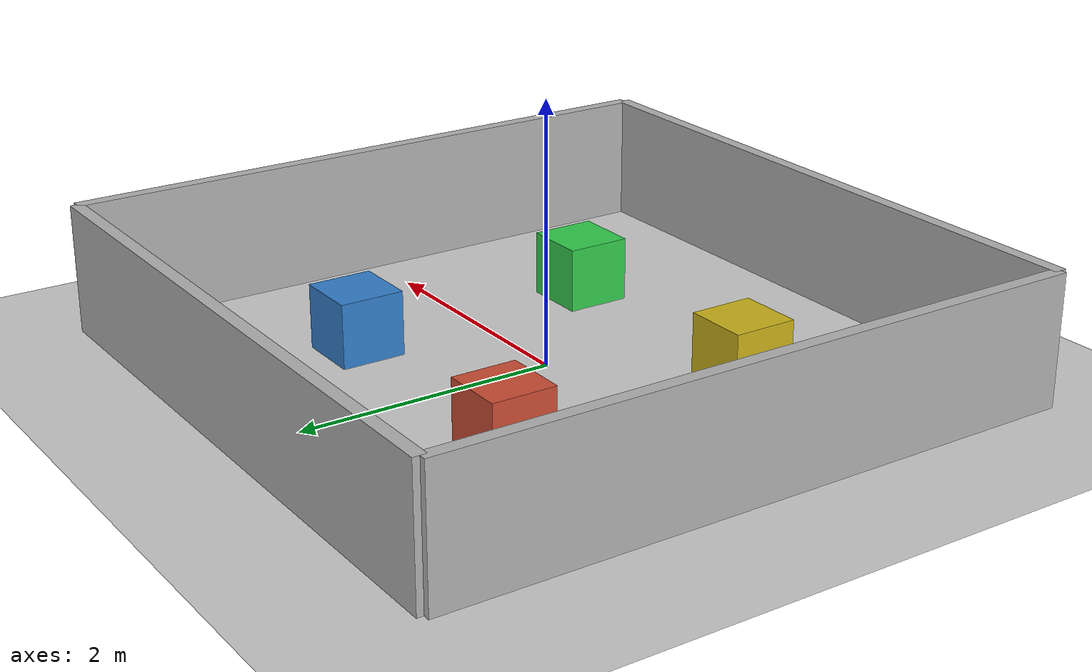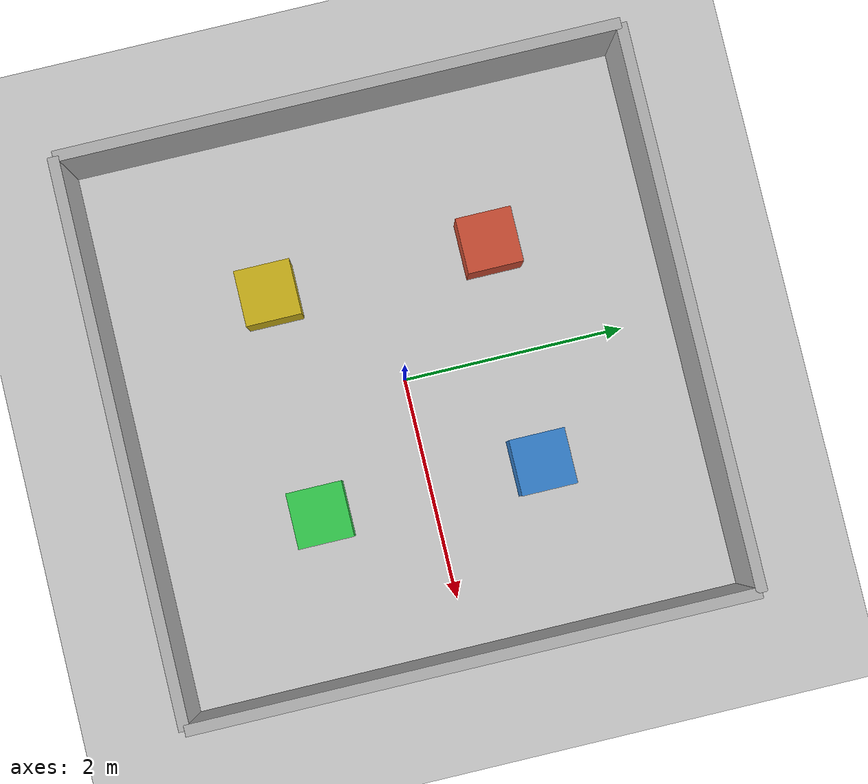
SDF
<?xml version="1.0" ?>
<sdf version="1.6">
  <world name="prueba_mundo">

    <!-- Luz ambiental -->
    <light name="sun" type="directional">
      <cast_shadows>true</cast_shadows>
      <pose>0 0 10 0 0 0</pose>
      <diffuse>0.8 0.8 0.8 1</diffuse>
      <specular>0.2 0.2 0.2 1</specular>
      <direction>-0.5 0.1 -0.9</direction>
    </light>

    <!-- Suelo -->
    <model name="ground_plane">
      <static>true</static>
      <link name="link">
        <collision name="collision">
          <geometry>
            <plane>
              <normal>0 0 1</normal>
              <size>100 100</size>
            </plane>
          </geometry>
        </collision>
        <visual name="visual">
          <geometry>
            <plane>
              <normal>0 0 1</normal>
              <size>100 100</size>
            </plane>
          </geometry>
          <material>
            <ambient>0.8 0.8 0.8 1</ambient>
            <diffuse>0.8 0.8 0.8 1</diffuse>
          </material>
        </visual>
      </link>
    </model>

    <!-- Pared Norte (y=2.5) -->
    <model name="wall_north">
      <static>true</static>
      <pose>0 2.5 0.5 0 0 0</pose>
      <link name="link">
        <collision name="collision">
          <geometry><box><size>5.0 0.1 1.0</size></box></geometry>
        </collision>
        <visual name="visual">
          <geometry><box><size>5.0 0.1 1.0</size></box></geometry>
          <material><ambient>0.7 0.7 0.7 1</ambient></material>
        </visual>
      </link>
    </model>

    <!-- Pared Sur (y=-2.5) -->
    <model name="wall_south">
      <static>true</static>
      <pose>0 -2.5 0.5 0 0 0</pose>
      <link name="link">
        <collision name="collision">
          <geometry><box><size>5.0 0.1 1.0</size></box></geometry>
        </collision>
        <visual name="visual">
          <geometry><box><size>5.0 0.1 1.0</size></box></geometry>
          <material><ambient>0.7 0.7 0.7 1</ambient></material>
        </visual>
      </link>
    </model>

    <!-- Pared Este (x=2.5) -->
    <model name="wall_east">
      <static>true</static>
      <pose>2.5 0 0.5 0 0 0</pose>
      <link name="link">
        <collision name="collision">
          <geometry><box><size>0.1 5.0 1.0</size></box></geometry>
        </collision>
        <visual name="visual">
          <geometry><box><size>0.1 5.0 1.0</size></box></geometry>
          <material><ambient>0.7 0.7 0.7 1</ambient></material>
        </visual>
      </link>
    </model>

    <!-- Pared Oeste (x=-2.5) -->
    <model name="wall_west">
      <static>true</static>
      <pose>-2.5 0 0.5 0 0 0</pose>
      <link name="link">
        <collision name="collision">
          <geometry><box><size>0.1 5.0 1.0</size></box></geometry>
        </collision>
        <visual name="visual">
          <geometry><box><size>0.1 5.0 1.0</size></box></geometry>
          <material><ambient>0.7 0.7 0.7 1</ambient></material>
        </visual>
      </link>
    </model>

    <!-- Caja 1 -->
    <model name="box_1">
      <static>true</static>
      <pose>1.0 1.0 0.25 0 0 0</pose>
      <link name="link">
        <collision name="collision">
          <geometry><box><size>0.5 0.5 0.5</size></box></geometry>
        </collision>
        <visual name="visual">
          <geometry><box><size>0.5 0.5 0.5</size></box></geometry>
          <material><ambient>0.2 0.5 0.8 1</ambient></material>
        </visual>
      </link>
    </model>

    <!-- Caja 2 -->
    <model name="box_2">
      <static>true</static>
      <pose>-1.0 1.0 0.25 0 0 0</pose>
      <link name="link">
        <collision name="collision">
          <geometry><box><size>0.5 0.5 0.5</size></box></geometry>
        </collision>
        <visual name="visual">
          <geometry><box><size>0.5 0.5 0.5</size></box></geometry>
          <material><ambient>0.8 0.3 0.2 1</ambient></material>
        </visual>
      </link>
    </model>

    <!-- Caja 3 -->
    <model name="box_3">
      <static>true</static>
      <pose>1.0 -1.0 0.25 0 0 0</pose>
      <link name="link">
        <collision name="collision">
          <geometry><box><size>0.5 0.5 0.5</size></box></geometry>
        </collision>
        <visual name="visual">
          <geometry><box><size>0.5 0.5 0.5</size></box></geometry>
          <material><ambient>0.2 0.8 0.3 1</ambient></material>
        </visual>
      </link>
    </model>

    <!-- Caja 4 -->
    <model name="box_4">
      <static>true</static>
      <pose>-1.0 -1.0 0.25 0 0 0</pose>
      <link name="link">
        <collision name="collision">
          <geometry><box><size>0.5 0.5 0.5</size></box></geometry>
        </collision>
        <visual name="visual">
          <geometry><box><size>0.5 0.5 0.5</size></box></geometry>
          <material><ambient>0.8 0.7 0.1 1</ambient></material>
        </visual>
      </link>
    </model>

    <!-- Física -->
    <physics type="ode">
      <real_time_update_rate>1000.0</real_time_update_rate>
      <max_step_size>0.001</max_step_size>
      <real_time_factor>1</real_time_factor>
    </physics>

  </world>
</sdf>
